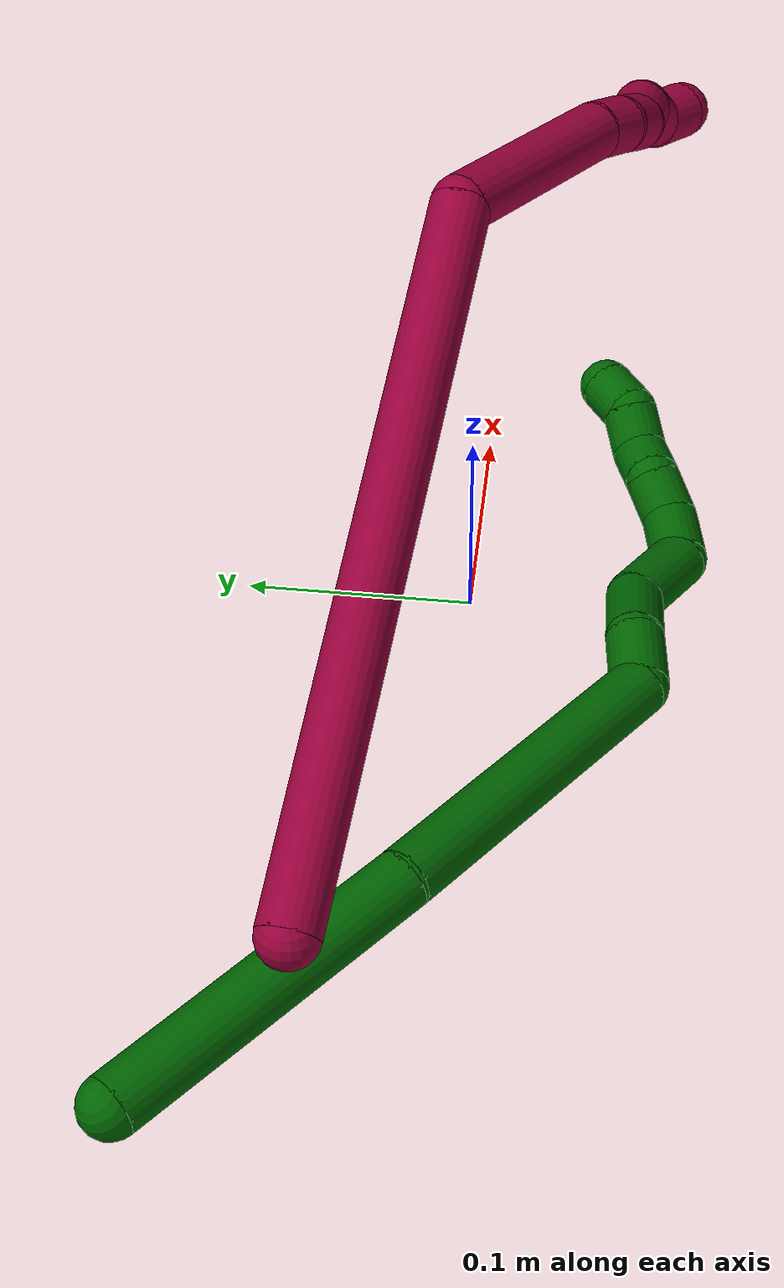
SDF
<sdf version="1.7">
 <world name="default">
  <model name="6">
   <static>0</static>
   <link name="6">
    <collision name="collision-cylinder-e_1_1_4">
     <pose>-0.023538 -0.060614 -0.02421 1.9508 -0.346115 -0.505088</pose>
     <geometry><cylinder><radius>0.0125</radius><length>0.138769</length></cylinder></geometry>
     <surface>
      <friction><ode><mu>1.16</mu><mu2>1.16</mu2><slip1>0</slip1><slip2>0</slip2></ode></friction>
      <contact><ode><kp>1e+06</kp><kd>1</kd><max_vel>0</max_vel><min_depth>0.001</min_depth></ode></contact>
     </surface>
    </collision>
    <visual name="visual-cylinder-e_1_1_4">
     <pose>-0.023538 -0.060614 -0.02421 1.9508 -0.346115 -0.505088</pose>
     <geometry><cylinder><radius>0.0125</radius><length>0.138769</length></cylinder></geometry>
     <material><ambient>0 0.392157 0.003922 1</ambient></material>
    </visual>
    <collision name="collision-cylinder-e_2_4_5">
     <pose>-0.061982 -0.185549 -0.081288 2.0432 -0.203489 -0.330608</pose>
     <geometry><cylinder><radius>0.0125</radius><length>0.147509</length></cylinder></geometry>
     <surface>
      <friction><ode><mu>1.16</mu><mu2>1.16</mu2><slip1>0</slip1><slip2>0</slip2></ode></friction>
      <contact><ode><kp>1e+06</kp><kd>1</kd><max_vel>0</max_vel><min_depth>0.001</min_depth></ode></contact>
     </surface>
    </collision>
    <visual name="visual-cylinder-e_2_4_5">
     <pose>-0.061982 -0.185549 -0.081288 2.0432 -0.203489 -0.330608</pose>
     <geometry><cylinder><radius>0.0125</radius><length>0.147509</length></cylinder></geometry>
     <material><ambient>0 0.392157 0.003922 1</ambient></material>
    </visual>
    <collision name="collision-cylinder-e_3_5_6">
     <pose>-0.071101 -0.26227 -0.115629 1.68904 0.43389 0.486469</pose>
     <geometry><cylinder><radius>0.0125</radius><length>0.027525</length></cylinder></geometry>
     <surface>
      <friction><ode><mu>1.16</mu><mu2>1.16</mu2><slip1>0</slip1><slip2>0</slip2></ode></friction>
      <contact><ode><kp>1e+06</kp><kd>1</kd><max_vel>0</max_vel><min_depth>0.001</min_depth></ode></contact>
     </surface>
    </collision>
    <visual name="visual-cylinder-e_3_5_6">
     <pose>-0.071101 -0.26227 -0.115629 1.68904 0.43389 0.486469</pose>
     <geometry><cylinder><radius>0.0125</radius><length>0.027525</length></cylinder></geometry>
     <material><ambient>0 0.392157 0.003922 1</ambient></material>
    </visual>
    <collision name="collision-cylinder-e_4_6_7">
     <pose>-0.057167 -0.2892 -0.124798 2.05789 0.460062 0.742025</pose>
     <geometry><cylinder><radius>0.0125</radius><length>0.0367</length></cylinder></geometry>
     <surface>
      <friction><ode><mu>1.16</mu><mu2>1.16</mu2><slip1>0</slip1><slip2>0</slip2></ode></friction>
      <contact><ode><kp>1e+06</kp><kd>1</kd><max_vel>0</max_vel><min_depth>0.001</min_depth></ode></contact>
     </surface>
    </collision>
    <visual name="visual-cylinder-e_4_6_7">
     <pose>-0.057167 -0.2892 -0.124798 2.05789 0.460062 0.742025</pose>
     <geometry><cylinder><radius>0.0125</radius><length>0.0367</length></cylinder></geometry>
     <material><ambient>0 0.392157 0.003922 1</ambient></material>
    </visual>
    <collision name="collision-cylinder-e_5_7_8">
     <pose>-0.050187 -0.321269 -0.142985 2.10988 -0.057081 -0.100602</pose>
     <geometry><cylinder><radius>0.0125</radius><length>0.04094</length></cylinder></geometry>
     <surface>
      <friction><ode><mu>1.16</mu><mu2>1.16</mu2><slip1>0</slip1><slip2>0</slip2></ode></friction>
      <contact><ode><kp>1e+06</kp><kd>1</kd><max_vel>0</max_vel><min_depth>0.001</min_depth></ode></contact>
     </surface>
    </collision>
    <visual name="visual-cylinder-e_5_7_8">
     <pose>-0.050187 -0.321269 -0.142985 2.10988 -0.057081 -0.100602</pose>
     <geometry><cylinder><radius>0.0125</radius><length>0.04094</length></cylinder></geometry>
     <material><ambient>0 0.392157 0.003922 1</ambient></material>
    </visual>
    <collision name="collision-cylinder-e_6_8_9">
     <pose>-0.044826 -0.350494 -0.154476 1.65617 0.507944 0.551099</pose>
     <geometry><cylinder><radius>0.0125</radius><length>0.026849</length></cylinder></geometry>
     <surface>
      <friction><ode><mu>1.16</mu><mu2>1.16</mu2><slip1>0</slip1><slip2>0</slip2></ode></friction>
      <contact><ode><kp>1e+06</kp><kd>1</kd><max_vel>0</max_vel><min_depth>0.001</min_depth></ode></contact>
     </surface>
    </collision>
    <visual name="visual-cylinder-e_6_8_9">
     <pose>-0.044826 -0.350494 -0.154476 1.65617 0.507944 0.551099</pose>
     <geometry><cylinder><radius>0.0125</radius><length>0.026849</length></cylinder></geometry>
     <material><ambient>0 0.392157 0.003922 1</ambient></material>
    </visual>
    <collision name="collision-cylinder-e_7_9_10">
     <pose>-0.033188 -0.369975 -0.150708 1.02169 0.509821 0.290043</pose>
     <geometry><cylinder><radius>0.0125</radius><length>0.020936</length></cylinder></geometry>
     <surface>
      <friction><ode><mu>1.16</mu><mu2>1.16</mu2><slip1>0</slip1><slip2>0</slip2></ode></friction>
      <contact><ode><kp>1e+06</kp><kd>1</kd><max_vel>0</max_vel><min_depth>0.001</min_depth></ode></contact>
     </surface>
    </collision>
    <visual name="visual-cylinder-e_7_9_10">
     <pose>-0.033188 -0.369975 -0.150708 1.02169 0.509821 0.290043</pose>
     <geometry><cylinder><radius>0.0125</radius><length>0.020936</length></cylinder></geometry>
     <material><ambient>0 0.392157 0.003922 1</ambient></material>
    </visual>
    <collision name="collision-cylinder-e_8_10_11">
     <pose>-0.021722 -0.38583 -0.146965 1.69731 0.663824 0.745933</pose>
     <geometry><cylinder><radius>0.0125</radius><length>0.020634</length></cylinder></geometry>
     <surface>
      <friction><ode><mu>1.16</mu><mu2>1.16</mu2><slip1>0</slip1><slip2>0</slip2></ode></friction>
      <contact><ode><kp>1e+06</kp><kd>1</kd><max_vel>0</max_vel><min_depth>0.001</min_depth></ode></contact>
     </surface>
    </collision>
    <visual name="visual-cylinder-e_8_10_11">
     <pose>-0.021722 -0.38583 -0.146965 1.69731 0.663824 0.745933</pose>
     <geometry><cylinder><radius>0.0125</radius><length>0.020634</length></cylinder></geometry>
     <material><ambient>0 0.392157 0.003922 1</ambient></material>
    </visual>
    <collision name="collision-cylinder-e_9_11_12">
     <pose>-0.011924 -0.402035 -0.143277 1.0462 0.350662 0.203613</pose>
     <geometry><cylinder><radius>0.0125</radius><length>0.020039</length></cylinder></geometry>
     <surface>
      <friction><ode><mu>1.16</mu><mu2>1.16</mu2><slip1>0</slip1><slip2>0</slip2></ode></friction>
      <contact><ode><kp>1e+06</kp><kd>1</kd><max_vel>0</max_vel><min_depth>0.001</min_depth></ode></contact>
     </surface>
    </collision>
    <visual name="visual-cylinder-e_9_11_12">
     <pose>-0.011924 -0.402035 -0.143277 1.0462 0.350662 0.203613</pose>
     <geometry><cylinder><radius>0.0125</radius><length>0.020039</length></cylinder></geometry>
     <material><ambient>0 0.392157 0.003922 1</ambient></material>
    </visual>
    <collision name="collision-cylinder-e_10_12_2">
     <pose>-0.00073 -0.416471 -0.137422 1.39116 0.881122 0.74989</pose>
     <geometry><cylinder><radius>0.0125</radius><length>0.020099</length></cylinder></geometry>
     <surface>
      <friction><ode><mu>1.16</mu><mu2>1.16</mu2><slip1>0</slip1><slip2>0</slip2></ode></friction>
      <contact><ode><kp>1e+06</kp><kd>1</kd><max_vel>0</max_vel><min_depth>0.001</min_depth></ode></contact>
     </surface>
    </collision>
    <visual name="visual-cylinder-e_10_12_2">
     <pose>-0.00073 -0.416471 -0.137422 1.39116 0.881122 0.74989</pose>
     <geometry><cylinder><radius>0.0125</radius><length>0.020099</length></cylinder></geometry>
     <material><ambient>0 0.392157 0.003922 1</ambient></material>
    </visual>
    <collision name="collision-sphere-2">
     <pose>0.007023 -0.422762 -0.136279 0 -0 0</pose>
     <geometry><sphere><radius>0.0125</radius></sphere></geometry>
     <surface>
      <friction><ode><mu>1.16</mu><mu2>1.16</mu2><slip1>0</slip1><slip2>0</slip2></ode></friction>
      <contact><ode><kp>1e+06</kp><kd>1</kd><max_vel>0</max_vel><min_depth>0.001</min_depth></ode></contact>
     </surface>
    </collision>
    <visual name="visual-sphere-2">
     <pose>0.007023 -0.422762 -0.136279 0 -0 0</pose>
     <geometry><sphere><radius>0.0125</radius></sphere></geometry>
     <material><ambient>0 0.392157 0.003922 1</ambient></material>
    </visual>
    <collision name="collision-sphere-12">
     <pose>-0.008482 -0.410179 -0.138564 0 -0 0</pose>
     <geometry><sphere><radius>0.0125</radius></sphere></geometry>
     <surface>
      <friction><ode><mu>1.16</mu><mu2>1.16</mu2><slip1>0</slip1><slip2>0</slip2></ode></friction>
      <contact><ode><kp>1e+06</kp><kd>1</kd><max_vel>0</max_vel><min_depth>0.001</min_depth></ode></contact>
     </surface>
    </collision>
    <visual name="visual-sphere-12">
     <pose>-0.008482 -0.410179 -0.138564 0 -0 0</pose>
     <geometry><sphere><radius>0.0125</radius></sphere></geometry>
     <material><ambient>0 0.392157 0.003922 1</ambient></material>
    </visual>
    <collision name="collision-sphere-11">
     <pose>-0.015366 -0.393891 -0.14799 0 -0 0</pose>
     <geometry><sphere><radius>0.0125</radius></sphere></geometry>
     <surface>
      <friction><ode><mu>1.16</mu><mu2>1.16</mu2><slip1>0</slip1><slip2>0</slip2></ode></friction>
      <contact><ode><kp>1e+06</kp><kd>1</kd><max_vel>0</max_vel><min_depth>0.001</min_depth></ode></contact>
     </surface>
    </collision>
    <visual name="visual-sphere-11">
     <pose>-0.015366 -0.393891 -0.14799 0 -0 0</pose>
     <geometry><sphere><radius>0.0125</radius></sphere></geometry>
     <material><ambient>0 0.392157 0.003922 1</ambient></material>
    </visual>
    <collision name="collision-sphere-10">
     <pose>-0.028079 -0.377769 -0.145939 0 -0 0</pose>
     <geometry><sphere><radius>0.0125</radius></sphere></geometry>
     <surface>
      <friction><ode><mu>1.16</mu><mu2>1.16</mu2><slip1>0</slip1><slip2>0</slip2></ode></friction>
      <contact><ode><kp>1e+06</kp><kd>1</kd><max_vel>0</max_vel><min_depth>0.001</min_depth></ode></contact>
     </surface>
    </collision>
    <visual name="visual-sphere-10">
     <pose>-0.028079 -0.377769 -0.145939 0 -0 0</pose>
     <geometry><sphere><radius>0.0125</radius></sphere></geometry>
     <material><ambient>0 0.392157 0.003922 1</ambient></material>
    </visual>
    <collision name="collision-sphere-9">
     <pose>-0.038296 -0.362181 -0.155477 0 -0 0</pose>
     <geometry><sphere><radius>0.0125</radius></sphere></geometry>
     <surface>
      <friction><ode><mu>1.16</mu><mu2>1.16</mu2><slip1>0</slip1><slip2>0</slip2></ode></friction>
      <contact><ode><kp>1e+06</kp><kd>1</kd><max_vel>0</max_vel><min_depth>0.001</min_depth></ode></contact>
     </surface>
    </collision>
    <visual name="visual-sphere-9">
     <pose>-0.038296 -0.362181 -0.155477 0 -0 0</pose>
     <geometry><sphere><radius>0.0125</radius></sphere></geometry>
     <material><ambient>0 0.392157 0.003922 1</ambient></material>
    </visual>
    <collision name="collision-sphere-4">
     <pose>-0.047077 -0.121228 -0.04842 0 -0 0</pose>
     <geometry><sphere><radius>0.0125</radius></sphere></geometry>
     <surface>
      <friction><ode><mu>1.16</mu><mu2>1.16</mu2><slip1>0</slip1><slip2>0</slip2></ode></friction>
      <contact><ode><kp>1e+06</kp><kd>1</kd><max_vel>0</max_vel><min_depth>0.001</min_depth></ode></contact>
     </surface>
    </collision>
    <visual name="visual-sphere-4">
     <pose>-0.047077 -0.121228 -0.04842 0 -0 0</pose>
     <geometry><sphere><radius>0.0125</radius></sphere></geometry>
     <material><ambient>0 0.392157 0.003922 1</ambient></material>
    </visual>
    <collision name="collision-sphere-1">
     <geometry><sphere><radius>0.0125</radius></sphere></geometry>
     <surface>
      <friction><ode><mu>1.16</mu><mu2>1.16</mu2><slip1>0</slip1><slip2>0</slip2></ode></friction>
      <contact><ode><kp>1e+06</kp><kd>1</kd><max_vel>0</max_vel><min_depth>0.001</min_depth></ode></contact>
     </surface>
    </collision>
    <visual name="visual-sphere-1">
     <geometry><sphere><radius>0.0125</radius></sphere></geometry>
     <material><ambient>0 0.392157 0.003922 1</ambient></material>
    </visual>
    <collision name="collision-sphere-8">
     <pose>-0.051355 -0.338807 -0.153476 0 -0 0</pose>
     <geometry><sphere><radius>0.0125</radius></sphere></geometry>
     <surface>
      <friction><ode><mu>1.16</mu><mu2>1.16</mu2><slip1>0</slip1><slip2>0</slip2></ode></friction>
      <contact><ode><kp>1e+06</kp><kd>1</kd><max_vel>0</max_vel><min_depth>0.001</min_depth></ode></contact>
     </surface>
    </collision>
    <visual name="visual-sphere-8">
     <pose>-0.051355 -0.338807 -0.153476 0 -0 0</pose>
     <geometry><sphere><radius>0.0125</radius></sphere></geometry>
     <material><ambient>0 0.392157 0.003922 1</ambient></material>
    </visual>
    <collision name="collision-sphere-5">
     <pose>-0.076886 -0.24987 -0.114156 0 -0 0</pose>
     <geometry><sphere><radius>0.0125</radius></sphere></geometry>
     <surface>
      <friction><ode><mu>1.16</mu><mu2>1.16</mu2><slip1>0</slip1><slip2>0</slip2></ode></friction>
      <contact><ode><kp>1e+06</kp><kd>1</kd><max_vel>0</max_vel><min_depth>0.001</min_depth></ode></contact>
     </surface>
    </collision>
    <visual name="visual-sphere-5">
     <pose>-0.076886 -0.24987 -0.114156 0 -0 0</pose>
     <geometry><sphere><radius>0.0125</radius></sphere></geometry>
     <material><ambient>0 0.392157 0.003922 1</ambient></material>
    </visual>
    <collision name="collision-sphere-6">
     <pose>-0.065315 -0.27467 -0.117102 0 -0 0</pose>
     <geometry><sphere><radius>0.0125</radius></sphere></geometry>
     <surface>
      <friction><ode><mu>1.16</mu><mu2>1.16</mu2><slip1>0</slip1><slip2>0</slip2></ode></friction>
      <contact><ode><kp>1e+06</kp><kd>1</kd><max_vel>0</max_vel><min_depth>0.001</min_depth></ode></contact>
     </surface>
    </collision>
    <visual name="visual-sphere-6">
     <pose>-0.065315 -0.27467 -0.117102 0 -0 0</pose>
     <geometry><sphere><radius>0.0125</radius></sphere></geometry>
     <material><ambient>0 0.392157 0.003922 1</ambient></material>
    </visual>
    <collision name="collision-sphere-7">
     <pose>-0.04902 -0.30373 -0.132494 0 -0 0</pose>
     <geometry><sphere><radius>0.0125</radius></sphere></geometry>
     <surface>
      <friction><ode><mu>1.16</mu><mu2>1.16</mu2><slip1>0</slip1><slip2>0</slip2></ode></friction>
      <contact><ode><kp>1e+06</kp><kd>1</kd><max_vel>0</max_vel><min_depth>0.001</min_depth></ode></contact>
     </surface>
    </collision>
    <visual name="visual-sphere-7">
     <pose>-0.04902 -0.30373 -0.132494 0 -0 0</pose>
     <geometry><sphere><radius>0.0125</radius></sphere></geometry>
     <material><ambient>0 0.392157 0.003922 1</ambient></material>
    </visual>
    <inertial>
     <pose>-0.042238 -0.216623 -0.089871 0 -0 0</pose>
     <mass>0.5</mass>
     <inertia>
      <ixx>0.000277</ixx>
      <ixy>0</ixy>
      <ixz>0</ixz>
      <iyy>-0.000358</iyy>
      <iyz>0</iyz>
      <izz>0.000572</izz>
     </inertia>
    </inertial>
   </link>
   <pose>-0.296935 0.097954 0.062065 -0.231614 0.368567 1.23755</pose>
  </model>
  <model name="8">
   <static>0</static>
   <link name="8">
    <collision name="collision-cylinder-e_1_1_4">
     <pose>0.128566 0.007995 -0.077666 -3.03901 1.02504 -2.95963</pose>
     <geometry><cylinder><radius>0.0125</radius><length>0.300833</length></cylinder></geometry>
     <surface>
      <friction><ode><mu>1.16</mu><mu2>1.16</mu2><slip1>0</slip1><slip2>0</slip2></ode></friction>
      <contact><ode><kp>1e+06</kp><kd>1</kd><max_vel>0</max_vel><min_depth>0.001</min_depth></ode></contact>
     </surface>
    </collision>
    <visual name="visual-cylinder-e_1_1_4">
     <pose>0.128566 0.007995 -0.077666 -3.03901 1.02504 -2.95963</pose>
     <geometry><cylinder><radius>0.0125</radius><length>0.300833</length></cylinder></geometry>
     <material><ambient>0.584314 0 0.227451 1</ambient></material>
    </visual>
    <collision name="collision-cylinder-e_2_4_5">
     <pose>0.30101 0.037672 -0.152379 -1.43546 1.10818 -0.990577</pose>
     <geometry><cylinder><radius>0.0125</radius><length>0.098062</length></cylinder></geometry>
     <surface>
      <friction><ode><mu>1.16</mu><mu2>1.16</mu2><slip1>0</slip1><slip2>0</slip2></ode></friction>
      <contact><ode><kp>1e+06</kp><kd>1</kd><max_vel>0</max_vel><min_depth>0.001</min_depth></ode></contact>
     </surface>
    </collision>
    <visual name="visual-cylinder-e_2_4_5">
     <pose>0.30101 0.037672 -0.152379 -1.43546 1.10818 -0.990577</pose>
     <geometry><cylinder><radius>0.0125</radius><length>0.098062</length></cylinder></geometry>
     <material><ambient>0.584314 0 0.227451 1</ambient></material>
    </visual>
    <collision name="collision-cylinder-e_3_5_6">
     <pose>0.353487 0.064066 -0.147302 -1.14724 1.02963 -0.700813</pose>
     <geometry><cylinder><radius>0.0125</radius><length>0.020068</length></cylinder></geometry>
     <surface>
      <friction><ode><mu>1.16</mu><mu2>1.16</mu2><slip1>0</slip1><slip2>0</slip2></ode></friction>
      <contact><ode><kp>1e+06</kp><kd>1</kd><max_vel>0</max_vel><min_depth>0.001</min_depth></ode></contact>
     </surface>
    </collision>
    <visual name="visual-cylinder-e_3_5_6">
     <pose>0.353487 0.064066 -0.147302 -1.14724 1.02963 -0.700813</pose>
     <geometry><cylinder><radius>0.0125</radius><length>0.020068</length></cylinder></geometry>
     <material><ambient>0.584314 0 0.227451 1</ambient></material>
    </visual>
    <collision name="collision-cylinder-e_4_6_7">
     <pose>0.371178 0.071548 -0.141693 -0.671433 1.11545 -0.428623</pose>
     <geometry><cylinder><radius>0.0125</radius><length>0.020243</length></cylinder></geometry>
     <surface>
      <friction><ode><mu>1.16</mu><mu2>1.16</mu2><slip1>0</slip1><slip2>0</slip2></ode></friction>
      <contact><ode><kp>1e+06</kp><kd>1</kd><max_vel>0</max_vel><min_depth>0.001</min_depth></ode></contact>
     </surface>
    </collision>
    <visual name="visual-cylinder-e_4_6_7">
     <pose>0.371178 0.071548 -0.141693 -0.671433 1.11545 -0.428623</pose>
     <geometry><cylinder><radius>0.0125</radius><length>0.020243</length></cylinder></geometry>
     <material><ambient>0.584314 0 0.227451 1</ambient></material>
    </visual>
    <collision name="collision-cylinder-e_5_7_8">
     <pose>0.390276 0.074621 -0.136942 -0.235943 1.44146 -0.207463</pose>
     <geometry><cylinder><radius>0.0125</radius><length>0.020184</length></cylinder></geometry>
     <surface>
      <friction><ode><mu>1.16</mu><mu2>1.16</mu2><slip1>0</slip1><slip2>0</slip2></ode></friction>
      <contact><ode><kp>1e+06</kp><kd>1</kd><max_vel>0</max_vel><min_depth>0.001</min_depth></ode></contact>
     </surface>
    </collision>
    <visual name="visual-cylinder-e_5_7_8">
     <pose>0.390276 0.074621 -0.136942 -0.235943 1.44146 -0.207463</pose>
     <geometry><cylinder><radius>0.0125</radius><length>0.020184</length></cylinder></geometry>
     <material><ambient>0.584314 0 0.227451 1</ambient></material>
    </visual>
    <collision name="collision-cylinder-e_6_8_9">
     <pose>0.407739 0.07714 -0.129206 -0.329747 0.828482 -0.146052</pose>
     <geometry><cylinder><radius>0.0125</radius><length>0.020234</length></cylinder></geometry>
     <surface>
      <friction><ode><mu>1.16</mu><mu2>1.16</mu2><slip1>0</slip1><slip2>0</slip2></ode></friction>
      <contact><ode><kp>1e+06</kp><kd>1</kd><max_vel>0</max_vel><min_depth>0.001</min_depth></ode></contact>
     </surface>
    </collision>
    <visual name="visual-cylinder-e_6_8_9">
     <pose>0.407739 0.07714 -0.129206 -0.329747 0.828482 -0.146052</pose>
     <geometry><cylinder><radius>0.0125</radius><length>0.020234</length></cylinder></geometry>
     <material><ambient>0.584314 0 0.227451 1</ambient></material>
    </visual>
    <collision name="collision-cylinder-e_7_9_2">
     <pose>0.423615 0.085037 -0.121972 -1.43718 0.973067 -0.866567</pose>
     <geometry><cylinder><radius>0.0125</radius><length>0.020375</length></cylinder></geometry>
     <surface>
      <friction><ode><mu>1.16</mu><mu2>1.16</mu2><slip1>0</slip1><slip2>0</slip2></ode></friction>
      <contact><ode><kp>1e+06</kp><kd>1</kd><max_vel>0</max_vel><min_depth>0.001</min_depth></ode></contact>
     </surface>
    </collision>
    <visual name="visual-cylinder-e_7_9_2">
     <pose>0.423615 0.085037 -0.121972 -1.43718 0.973067 -0.866567</pose>
     <geometry><cylinder><radius>0.0125</radius><length>0.020375</length></cylinder></geometry>
     <material><ambient>0.584314 0 0.227451 1</ambient></material>
    </visual>
    <collision name="collision-sphere-2">
     <pose>0.432037 0.090719 -0.121208 0 -0 0</pose>
     <geometry><sphere><radius>0.0125</radius></sphere></geometry>
     <surface>
      <friction><ode><mu>1.16</mu><mu2>1.16</mu2><slip1>0</slip1><slip2>0</slip2></ode></friction>
      <contact><ode><kp>1e+06</kp><kd>1</kd><max_vel>0</max_vel><min_depth>0.001</min_depth></ode></contact>
     </surface>
    </collision>
    <visual name="visual-sphere-2">
     <pose>0.432037 0.090719 -0.121208 0 -0 0</pose>
     <geometry><sphere><radius>0.0125</radius></sphere></geometry>
     <material><ambient>0.584314 0 0.227451 1</ambient></material>
    </visual>
    <collision name="collision-sphere-9">
     <pose>0.415194 0.079354 -0.122735 0 -0 0</pose>
     <geometry><sphere><radius>0.0125</radius></sphere></geometry>
     <surface>
      <friction><ode><mu>1.16</mu><mu2>1.16</mu2><slip1>0</slip1><slip2>0</slip2></ode></friction>
      <contact><ode><kp>1e+06</kp><kd>1</kd><max_vel>0</max_vel><min_depth>0.001</min_depth></ode></contact>
     </surface>
    </collision>
    <visual name="visual-sphere-9">
     <pose>0.415194 0.079354 -0.122735 0 -0 0</pose>
     <geometry><sphere><radius>0.0125</radius></sphere></geometry>
     <material><ambient>0.584314 0 0.227451 1</ambient></material>
    </visual>
    <collision name="collision-sphere-4">
     <pose>0.257132 0.01599 -0.155332 0 -0 0</pose>
     <geometry><sphere><radius>0.0125</radius></sphere></geometry>
     <surface>
      <friction><ode><mu>1.16</mu><mu2>1.16</mu2><slip1>0</slip1><slip2>0</slip2></ode></friction>
      <contact><ode><kp>1e+06</kp><kd>1</kd><max_vel>0</max_vel><min_depth>0.001</min_depth></ode></contact>
     </surface>
    </collision>
    <visual name="visual-sphere-4">
     <pose>0.257132 0.01599 -0.155332 0 -0 0</pose>
     <geometry><sphere><radius>0.0125</radius></sphere></geometry>
     <material><ambient>0.584314 0 0.227451 1</ambient></material>
    </visual>
    <collision name="collision-sphere-1">
     <geometry><sphere><radius>0.0125</radius></sphere></geometry>
     <surface>
      <friction><ode><mu>1.16</mu><mu2>1.16</mu2><slip1>0</slip1><slip2>0</slip2></ode></friction>
      <contact><ode><kp>1e+06</kp><kd>1</kd><max_vel>0</max_vel><min_depth>0.001</min_depth></ode></contact>
     </surface>
    </collision>
    <visual name="visual-sphere-1">
     <geometry><sphere><radius>0.0125</radius></sphere></geometry>
     <material><ambient>0.584314 0 0.227451 1</ambient></material>
    </visual>
    <collision name="collision-sphere-8">
     <pose>0.400283 0.074925 -0.135677 0 -0 0</pose>
     <geometry><sphere><radius>0.0125</radius></sphere></geometry>
     <surface>
      <friction><ode><mu>1.16</mu><mu2>1.16</mu2><slip1>0</slip1><slip2>0</slip2></ode></friction>
      <contact><ode><kp>1e+06</kp><kd>1</kd><max_vel>0</max_vel><min_depth>0.001</min_depth></ode></contact>
     </surface>
    </collision>
    <visual name="visual-sphere-8">
     <pose>0.400283 0.074925 -0.135677 0 -0 0</pose>
     <geometry><sphere><radius>0.0125</radius></sphere></geometry>
     <material><ambient>0.584314 0 0.227451 1</ambient></material>
    </visual>
    <collision name="collision-sphere-5">
     <pose>0.344887 0.059354 -0.149427 0 -0 0</pose>
     <geometry><sphere><radius>0.0125</radius></sphere></geometry>
     <surface>
      <friction><ode><mu>1.16</mu><mu2>1.16</mu2><slip1>0</slip1><slip2>0</slip2></ode></friction>
      <contact><ode><kp>1e+06</kp><kd>1</kd><max_vel>0</max_vel><min_depth>0.001</min_depth></ode></contact>
     </surface>
    </collision>
    <visual name="visual-sphere-5">
     <pose>0.344887 0.059354 -0.149427 0 -0 0</pose>
     <geometry><sphere><radius>0.0125</radius></sphere></geometry>
     <material><ambient>0.584314 0 0.227451 1</ambient></material>
    </visual>
    <collision name="collision-sphere-6">
     <pose>0.362087 0.068779 -0.145178 0 -0 0</pose>
     <geometry><sphere><radius>0.0125</radius></sphere></geometry>
     <surface>
      <friction><ode><mu>1.16</mu><mu2>1.16</mu2><slip1>0</slip1><slip2>0</slip2></ode></friction>
      <contact><ode><kp>1e+06</kp><kd>1</kd><max_vel>0</max_vel><min_depth>0.001</min_depth></ode></contact>
     </surface>
    </collision>
    <visual name="visual-sphere-6">
     <pose>0.362087 0.068779 -0.145178 0 -0 0</pose>
     <geometry><sphere><radius>0.0125</radius></sphere></geometry>
     <material><ambient>0.584314 0 0.227451 1</ambient></material>
    </visual>
    <collision name="collision-sphere-7">
     <pose>0.380268 0.074317 -0.138208 0 -0 0</pose>
     <geometry><sphere><radius>0.0125</radius></sphere></geometry>
     <surface>
      <friction><ode><mu>1.16</mu><mu2>1.16</mu2><slip1>0</slip1><slip2>0</slip2></ode></friction>
      <contact><ode><kp>1e+06</kp><kd>1</kd><max_vel>0</max_vel><min_depth>0.001</min_depth></ode></contact>
     </surface>
    </collision>
    <visual name="visual-sphere-7">
     <pose>0.380268 0.074317 -0.138208 0 -0 0</pose>
     <geometry><sphere><radius>0.0125</radius></sphere></geometry>
     <material><ambient>0.584314 0 0.227451 1</ambient></material>
    </visual>
    <inertial>
     <pose>0.215122 0.027266 -0.10399 0 -0 0</pose>
     <mass>0.5</mass>
     <inertia>
      <ixx>-0.001354</ixx>
      <ixy>0</ixy>
      <ixz>0</ixz>
      <iyy>0.002102</iyy>
      <iyz>0</iyz>
      <izz>-0.002199</izz>
     </inertia>
    </inertial>
   </link>
   <pose>-0.242931 0.042287 0.094892 3.12133 0.198683 -0.069874</pose>
  </model>
 </world>
</sdf>
